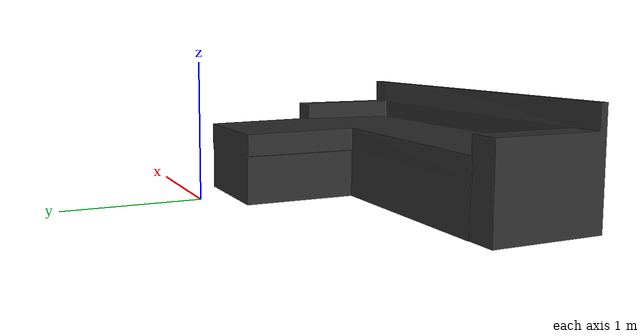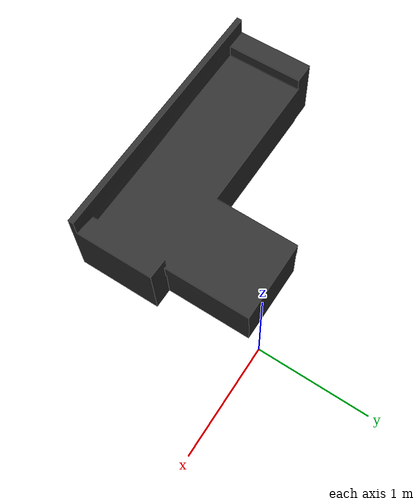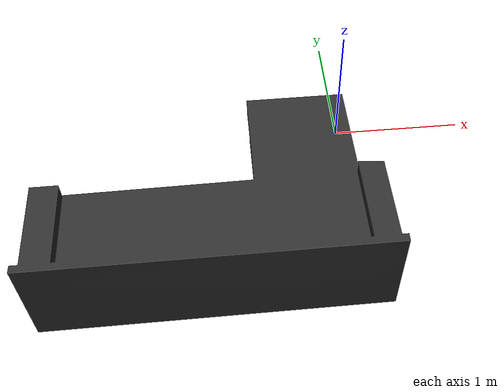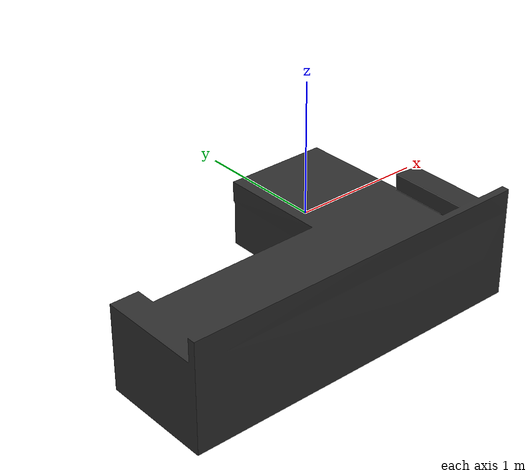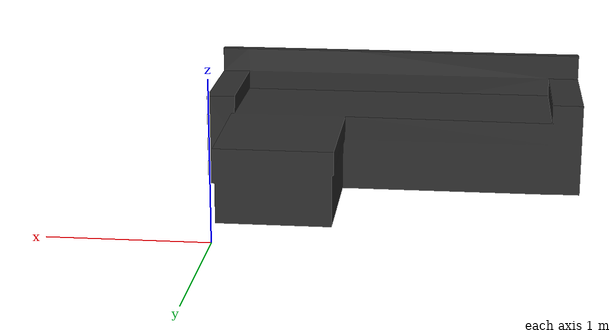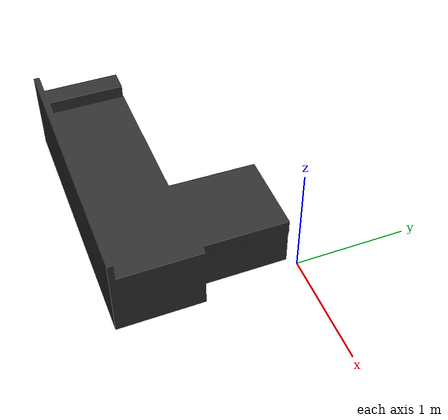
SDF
<?xml version='1.0'?>
<sdf version='1.6'>
 <model name='couch'>
    <pose>0 0 0.3 0 0 0</pose>
    <static>true</static>
    <link name='link'>
      <inertial>
        <mass>70.0</mass>
        <inertia> <!-- inertias are tricky to compute -->
          <!-- http://gazebosim.org/tutorials?tut=inertia&cat=build_robot -->
          <ixx>0.083</ixx>       <!-- for a box: ixx = 0.083 * mass * (y*y + z*z) -->
          <ixy>0.0</ixy>         <!-- for a box: ixy = 0 -->
          <ixz>0.0</ixz>         <!-- for a box: ixz = 0 -->
          <iyy>0.083</iyy>       <!-- for a box: iyy = 0.083 * mass * (x*x + z*z) -->
          <iyz>0.0</iyz>         <!-- for a box: iyz = 0 -->
          <izz>0.083</izz>       <!-- for a box: izz = 0.083 * mass * (x*x + y*y) -->
        </inertia>
      </inertial>

      <collision name='collision'>
        <geometry>
          <box>
            <mesh><uri>model://couch/meshes/couch.dae</uri></mesh>
          </box>
        </geometry>
      </collision>

 <visual name="visual">
                <geometry>
                    <mesh><uri>model://couch/meshes/couch.dae</uri></mesh>

                </geometry>
        </visual>

    </link>
  </model>
</sdf>
